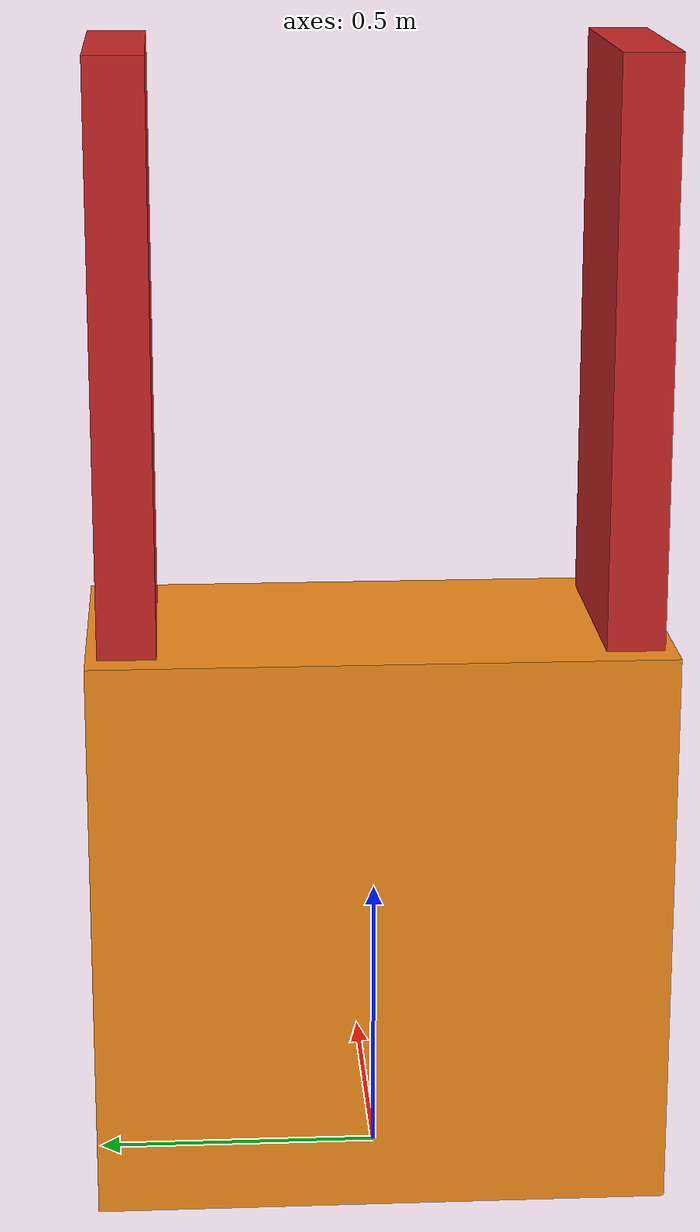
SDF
<sdf version='1.7'>
  <model name='gripper'>
    <joint name='world_to_base' type='fixed'>
      <pose relative_to='__model__'>0 0 0 0 -0 0</pose>
      <parent>world</parent>
      <child>base</child>
    </joint>
    <link name='base'>
      <pose relative_to='world_to_base'>0 0 0 0 -0 0</pose>
      <inertial>
        <pose>0 0 0 0 -0 0</pose>
        <mass>50</mass>
        <inertia>
          <ixx>1</ixx>
          <ixy>0</ixy>
          <ixz>0</ixz>
          <iyy>1</iyy>
          <iyz>0</iyz>
          <izz>1</izz>
        </inertia>
      </inertial>
      <visual name='base_visual'>
        <pose>0 0 0.5 0 -0 0</pose>
        <geometry>
          <box>
            <size>0.5 1 1</size>
          </box>
        </geometry>
        <material>
          <script>
            <name>Gazebo/Orange</name>
            <uri>file://media/materials/scripts/gazebo.material</uri>
          </script>
        </material>
      </visual>
    </link>
    <joint name='left_finger_joint' type='prismatic'>
      <pose relative_to='base'>0 0.48 1 0 -0 3.14159</pose>
      <parent>base</parent>
      <child>finger_left</child>
      <axis>
        <xyz>0 1 0</xyz>
        <limit>
          <lower>0</lower>
          <upper>0.38</upper>
          <effort>1000</effort>
          <velocity>10</velocity>
        </limit>
        <dynamics>
          <spring_reference>0</spring_reference>
          <spring_stiffness>0</spring_stiffness>
        </dynamics>
      </axis>
    </joint>
    <link name='finger_left'>
      <pose relative_to='left_finger_joint'>0 0 0 0 -0 0</pose>
      <inertial>
        <pose>0 0 0 0 -0 0</pose>
        <mass>5</mass>
        <inertia>
          <ixx>1</ixx>
          <ixy>0</ixy>
          <ixz>0</ixz>
          <iyy>1</iyy>
          <iyz>0</iyz>
          <izz>1</izz>
        </inertia>
      </inertial>
      <visual name='finger_left_visual'>
        <pose>0 0.05 0.5 0 -0 0</pose>
        <geometry>
          <box>
            <size>0.4 0.1 1</size>
          </box>
        </geometry>
        <material>
          <script>
            <name>Gazebo/Red</name>
            <uri>file://media/materials/scripts/gazebo.material</uri>
          </script>
        </material>
      </visual>
    </link>
    <joint name='right_finger_joint' type='prismatic'>
      <pose relative_to='base'>0 -0.48 1 0 -0 0</pose>
      <parent>base</parent>
      <child>finger_right</child>
      <axis>
        <xyz>0 1 0</xyz>
        <limit>
          <lower>0</lower>
          <upper>0.38</upper>
          <effort>1000</effort>
          <velocity>10</velocity>
        </limit>
        <dynamics>
          <spring_reference>0</spring_reference>
          <spring_stiffness>0</spring_stiffness>
        </dynamics>
      </axis>
    </joint>
    <link name='finger_right'>
      <pose relative_to='right_finger_joint'>0 0 0 0 -0 0</pose>
      <inertial>
        <pose>0 0 0 0 -0 0</pose>
        <mass>5</mass>
        <inertia>
          <ixx>1</ixx>
          <ixy>0</ixy>
          <ixz>0</ixz>
          <iyy>1</iyy>
          <iyz>0</iyz>
          <izz>1</izz>
        </inertia>
      </inertial>
      <visual name='finger_right_visual'>
        <pose>0 0.05 0.5 0 -0 0</pose>
        <geometry>
          <box>
            <size>0.4 0.1 1</size>
          </box>
        </geometry>
        <material>
          <script>
            <name>Gazebo/Red</name>
            <uri>file://media/materials/scripts/gazebo.material</uri>
          </script>
        </material>
      </visual>
    </link>
    <static>0</static>
    <plugin name='gazebo_ros2_control' filename='libgazebo_ros2_control.so'>
      <robot_param>robot_description</robot_param>
      <robot_param_node>robot_state_publisher</robot_param_node>
      <parameters>/home/mkhuthir/ws/install/bots/share/bots/config/gripper.yaml</parameters>
    </plugin>
  </model>
</sdf>
